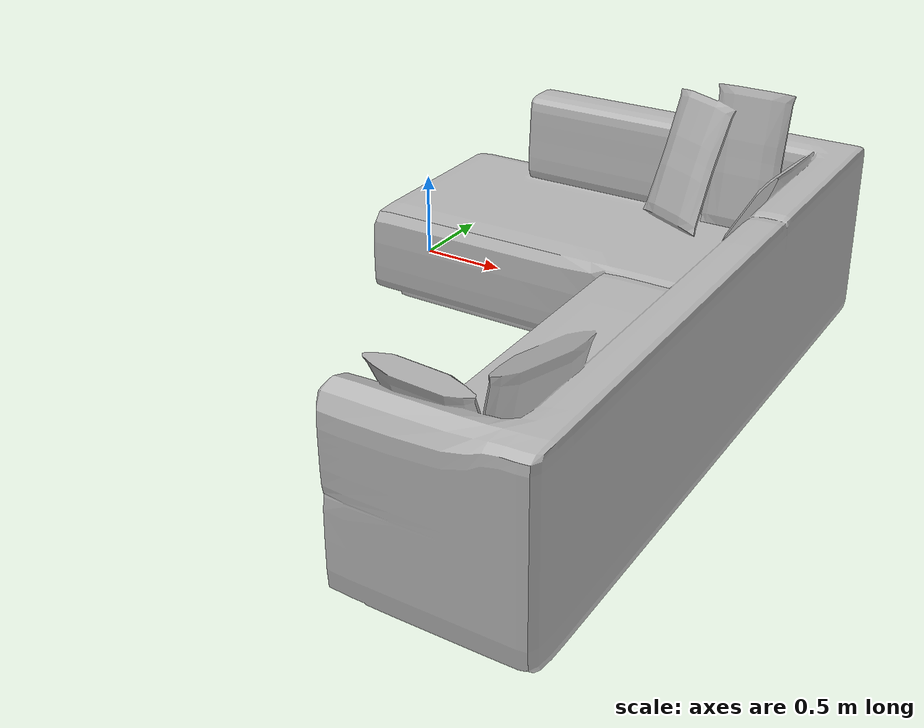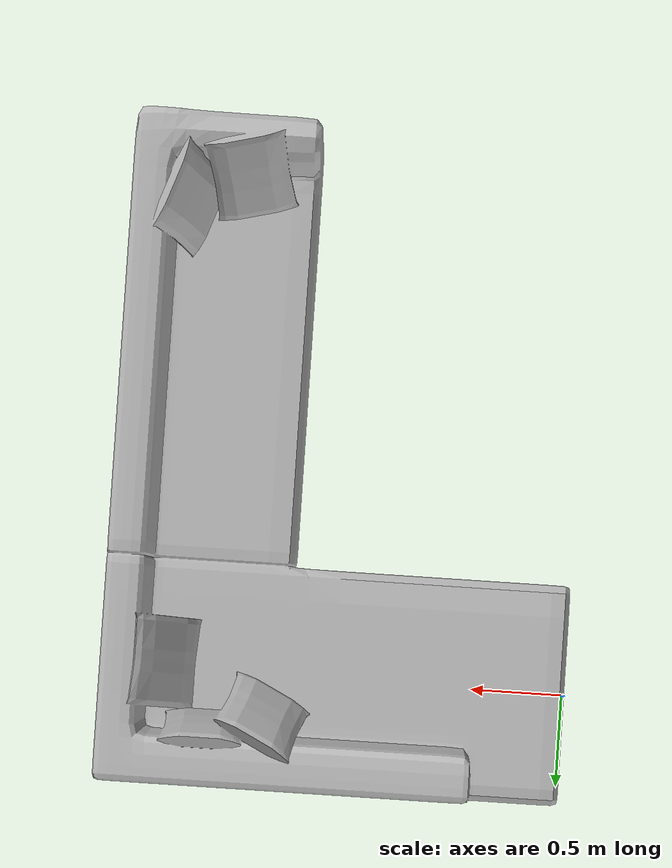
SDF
<?xml version="1.0" ?>
<sdf version="1.6">
  <model name="waitingseat">
    <static>true</static>
    <link name="link">
      <collision name="collision">
        <geometry>
          <mesh>
            <uri>model://waitingseat/meshes/sofa.obj</uri>
          </mesh>
        </geometry>
      </collision>
      <visual name="visual">
        <geometry>
          <mesh>
            <uri>model://waitingseat/meshes/sofa.obj</uri>
          </mesh>
        </geometry>
      </visual>
    </link>
  </model>
</sdf>
